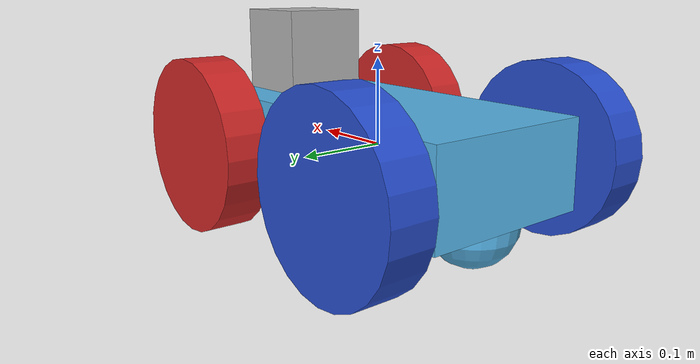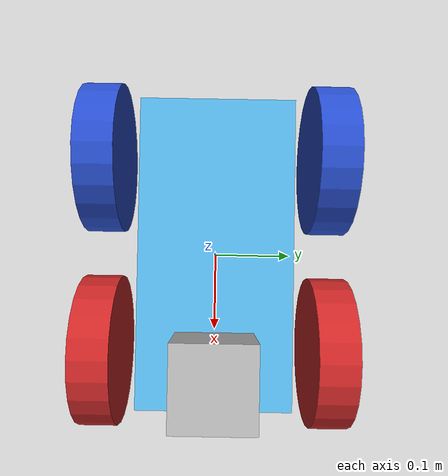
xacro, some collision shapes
<?xml version='1.0'?>

<robot name="my_robot" xmlns:xacro="http://www.ros.org/wiki/xacro">
  <xacro:include filename="$(find my_robot)/urdf/my_robot.gazebo"/>

  <link name="robot_footprint"></link>

  <joint name="robot_footprint_joint" type="fixed">
    <origin xyz="0 0 0" rpy="0 0 0" />
    <parent link="robot_footprint"/>
    <child link="chassis" />
  </joint>

  <link name='chassis'>
    <pose>0 0 0.1 0 0 0</pose>

    <inertial>
      <mass value="15.0"/>
      <origin xyz="0.0 0 0" rpy=" 0 0 0"/>
      <inertia
          ixx="0.1" ixy="0" ixz="0"
          iyy="0.1" iyz="0"
          izz="0.1"
      />
    </inertial>

    <collision name='collision'>
      <origin xyz="0 0 0" rpy=" 0 0 0"/>
      <geometry>
        <box size=".4 .2 .1"/>
      </geometry>
    </collision>

    <visual name='chassis_visual'>
      <origin xyz="0 0 0" rpy=" 0 0 0"/>
      <geometry>
        <box size=".4 .2 .1"/>
      </geometry>
    </visual>

    <collision name='back_caster_collision'>
      <origin xyz="-0.15 0 -0.05" rpy=" 0 0 0"/>
      <geometry>
        <sphere radius="0.0499"/>
      </geometry>
    </collision>

    <visual name='back_caster_visual'>
      <origin xyz="-0.15 0 -0.05" rpy=" 0 0 0"/>
      <geometry>
        <sphere radius="0.05"/>
      </geometry>
    </visual>

    <collision name='front_caster_collision'>
      <origin xyz="0.15 0 -0.05" rpy=" 0 0 0"/>
      <geometry>
        <sphere radius="0.0499"/>
      </geometry>
    </collision>

    <visual name='front_caster_visual'>
      <origin xyz="0.15 0 -0.05" rpy=" 0 0 0"/>
      <geometry>
        <sphere radius="0.05"/>
      </geometry>
    </visual>
  </link>

  <link name='front_left_wheel'>
    <inertial>
      <mass value="5.0"/>
      <origin xyz="0 0 0" rpy="0 1.5707 1.5707"/>
      <inertia
          ixx="0.1" ixy="0" ixz="0"
          iyy="0.1" iyz="0"
          izz="0.1"
      />
    </inertial>

    <collision name='collision'>
      <origin xyz="0 0 0" rpy="0 1.5707 1.5707"/>
      <geometry>
        <cylinder radius="0.1" length="0.05"/>
      </geometry>
    </collision>

    <visual name='front_left_wheel_visual'>
      <origin xyz="0 0 0" rpy="0 1.5707 1.5707" />
      <geometry>
        <cylinder radius="0.1" length="0.05" />
      </geometry>
    </visual>
  </link>

  <link name='front_right_wheel'>
    <inertial>
      <mass value="5.0"/>
      <inertia
          ixx="0.1" ixy="0" ixz="0"
          iyy="0.1" iyz="0"
          izz="0.1"
      />
    </inertial>

    <collision name='collision'>
      <origin xyz="0 0 0" rpy="0 1.5707 1.5707"/>
      <geometry>
        <cylinder radius="0.1" length="0.05"/>
      </geometry>
    </collision>

    <visual name='front_right_wheel_visual'>
      <origin xyz="0 0 0" rpy="0 1.5707 1.5707" />
      <geometry>
        <cylinder radius="0.1" length="0.05" />
      </geometry>
    </visual>
  </link>

  <link name='rear_left_wheel'>
    <inertial>
      <mass value="5.0"/>
      <origin xyz="0 0 0" rpy="0 1.5707 1.5707"/>
      <inertia
          ixx="0.1" ixy="0" ixz="0"
          iyy="0.1" iyz="0"
          izz="0.1"
      />
    </inertial>

    <collision name='collision'>
      <origin xyz="0 0 0" rpy="0 1.5707 1.5707"/>
      <geometry>
        <cylinder radius="0.1" length="0.05"/>
      </geometry>
    </collision>

    <visual name='rear_left_wheel_visual'>
      <origin xyz="0 0 0" rpy="0 1.5707 1.5707" />
      <geometry>
        <cylinder radius="0.1" length="0.05" />
      </geometry>
    </visual>
  </link>

  <link name='rear_right_wheel'>
    <inertial>
      <mass value="5.0"/>
      <inertia
          ixx="0.1" ixy="0" ixz="0"
          iyy="0.1" iyz="0"
          izz="0.1"
      />
    </inertial>

    <collision name='collision'>
      <origin xyz="0 0 0" rpy="0 1.5707 1.5707"/>
      <geometry>
        <cylinder radius="0.1" length="0.05"/>
      </geometry>
    </collision>

    <visual name='rear_right_wheel_visual'>
      <origin xyz="0 0 0" rpy="0 1.5707 1.5707" />
      <geometry>
        <cylinder radius="0.1" length="0.05" />
      </geometry>
    </visual>
  </link>

  <joint type="continuous" name="front_left_wheel_hinge">
    <origin xyz="0.13 0.15 0" rpy="0 0 0"/>
    <child link="front_left_wheel"/>
    <parent link="chassis"/>
    <axis xyz="0 1 0" rpy="0 0 0"/>
    <limit effort="10000" velocity="1000"/>
    <dynamics damping="1.0" friction="1.0"/>
  </joint>

  <joint type="continuous" name="front_right_wheel_hinge">
    <origin xyz="0.13 -0.15 0" rpy="0 0 0"/>
    <child link="front_right_wheel"/>
    <parent link="chassis"/>
    <axis xyz="0 1 0" rpy="0 0 0"/>
    <limit effort="10000" velocity="1000"/>
    <dynamics damping="1.0" friction="1.0"/>
  </joint>

  <joint type="continuous" name="rear_left_wheel_hinge">
    <origin xyz="-0.13 0.15 0" rpy="0 0 0"/>
    <child link="rear_left_wheel"/>
    <parent link="chassis"/>
    <axis xyz="0 1 0" rpy="0 0 0"/>
    <limit effort="10000" velocity="1000"/>
    <dynamics damping="1.0" friction="1.0"/>
  </joint>

  <joint type="continuous" name="rear_right_wheel_hinge">
    <origin xyz="-0.13 -0.15 0" rpy="0 0 0"/>
    <child link="rear_right_wheel"/>
    <parent link="chassis"/>
    <axis xyz="0 1 0" rpy="0 0 0"/>
    <limit effort="10000" velocity="1000"/>
    <dynamics damping="1.0" friction="1.0"/>
  </joint>

  <link name='camera'>
    <inertial>
      <mass value="0.1"/>
      <origin xyz="0 0 0" rpy="0 0 0"/>
      <inertia
        ixx="1e-6" ixy="0" ixz="0"
	iyy="1e-6" iyz="0"
	izz="1e-6"
      />
    </inertial>

    <visual name="visual">
      <geometry>
        <box size="0.05 0.05 0.05"/>
      </geometry>
    </visual>

    <collision name="collision">
      <geometry>
        <box size="0.05 0.05 0.05"/>
      </geometry>
    </collision>
  </link>

  <joint type="fixed" name="camera_joint">
    <origin xyz="0.2 0 0" rpy="0 0 0"/>
    <child link="camera"/>
    <parent link="chassis"/>
    <axis xyz="0 1 0" rpy="0 0 0"/>
  </joint>

  <link name='hokuyo'>
    <inertial>
      <mass value="1e-5"/>
      <origin xyz="0 0 0" rpy="0 0 0"/>
      <inertia
        ixx="1e-6" ixy="0" ixz="0"
	iyy="1e-6" iyz="0"
	izz="1e-6"
      />
    </inertial>

    <visual name="visual">
      <geometry>
        <mesh filename="package://my_robot/meshes/hokuyo.dae"/>
      </geometry>
    </visual>

    <collision name="collision">
      <geometry>
        <box size="0.1 0.1 0.1"/>
      </geometry>
    </collision>
  </link>

  <joint type="fixed" name="hokuyo_joint">
    <origin xyz="0.15 0 0.1" rpy="0 0 0"/>
    <child link="hokuyo"/>
    <parent link="chassis"/>
    <axis xyz="0 1 0" rpy="0 0 0"/>
  </joint>

  <gazebo reference="front_left_wheel">
   <material>Gazebo/Red</material>
  </gazebo>

  <gazebo reference="front_right_wheel">
   <material>Gazebo/Red</material>
  </gazebo>

  <gazebo reference="rear_left_wheel">
   <material>Gazebo/Blue</material>
  </gazebo>

  <gazebo reference="rear_right_wheel">
   <material>Gazebo/Blue</material>
  </gazebo>
</robot>
